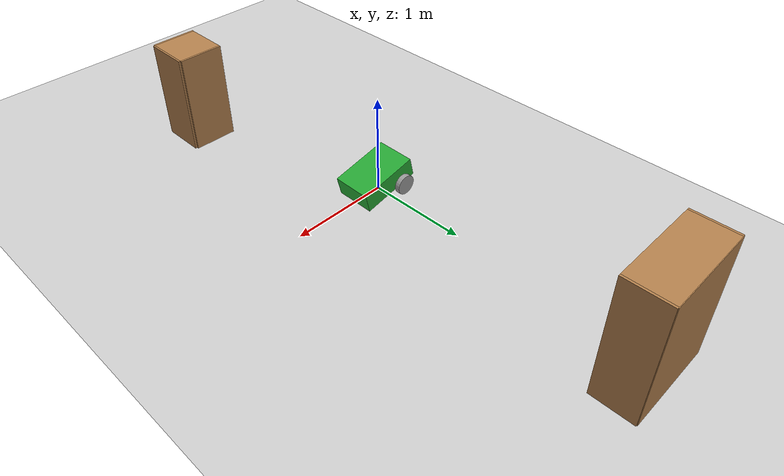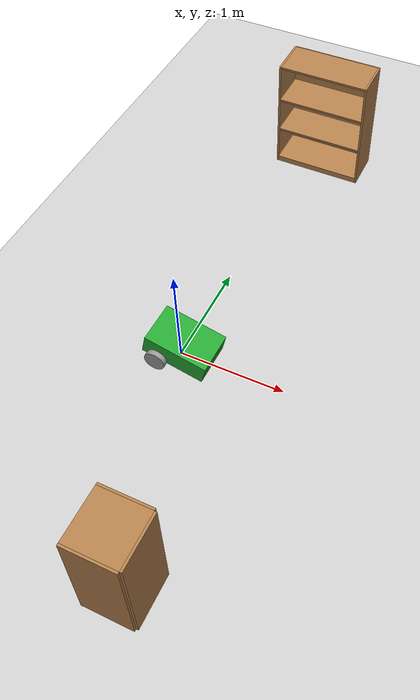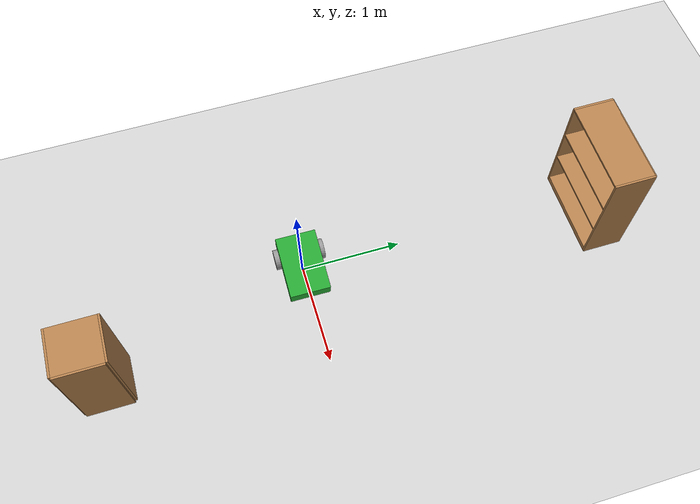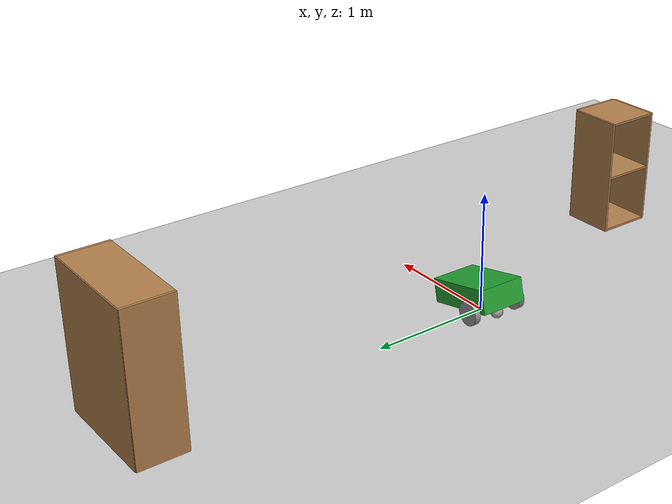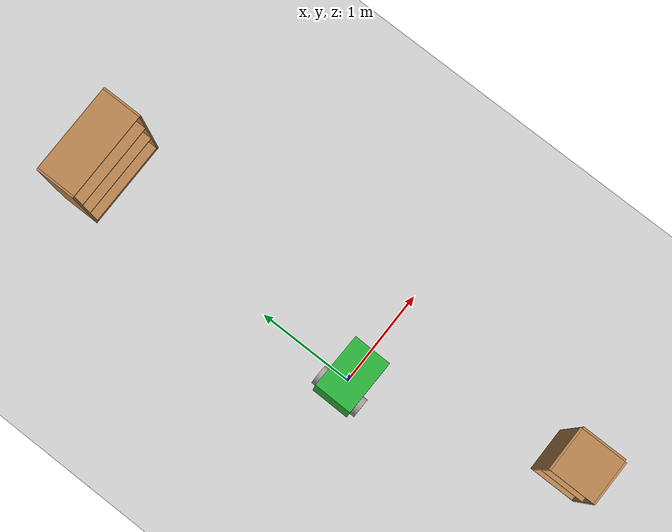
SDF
<sdf version="1.7">
 <world name="default">
  <light name="sun" type="directional">
   <pose>0 0 10 0 -0 0</pose>
   <diffuse>0.8 0.8 0.8 1</diffuse>
   <specular>0.2 0.2 0.2 1</specular>
   <attenuation>
    <range>1000</range>
    <constant>0.9</constant>
    <linear>0.01</linear>
    <quadratic>0.001</quadratic>
   </attenuation>
   <direction>-0.5 0.1 -0.9</direction>
   <spot><inner_angle>0</inner_angle><outer_angle>0</outer_angle><falloff>0</falloff></spot>
  </light>
  <model name="ground_plane">
   <static>1</static>
   <link name="link">
    <collision name="collision">
     <geometry><plane><normal>0 0 1</normal><size>100 100</size></plane></geometry>
     <surface><friction><ode><mu>100</mu><mu2>50</mu2></ode></friction></surface>
    </collision>
    <visual name="visual">
     <cast_shadows>0</cast_shadows>
     <geometry><plane><normal>0 0 1</normal><size>100 100</size></plane></geometry>
     <material>
      <script><uri>file://media/materials/scripts/gazebo.material</uri><name>Gazebo/Grey</name></script>
     </material>
    </visual>
   </link>
  </model>
  <gravity>0 0 -9.8</gravity>
  <magnetic_field>6e-06 2.3e-05 -4.2e-05</magnetic_field>
  <atmosphere type="adiabatic"/>
  <physics type="ode">
   <max_step_size>0.001</max_step_size>
   <real_time_factor>1</real_time_factor>
   <real_time_update_rate>1000</real_time_update_rate>
  </physics>
  <scene><ambient>0.4 0.4 0.4 1</ambient><background>0.7 0.7 0.7 1</background><shadows>1</shadows></scene>
  <audio><device>default</device></audio>
  <spherical_coordinates>
   <surface_model>EARTH_WGS84</surface_model>
   <latitude_deg>0</latitude_deg>
   <longitude_deg>0</longitude_deg>
   <elevation>0</elevation>
   <heading_deg>0</heading_deg>
  </spherical_coordinates>
  <model name="my_robot">
   <link name="base_footprint">
    <inertial>
     <pose>-0.018182 0 0.186364 0 -0 0</pose>
     <mass>5.5</mass>
     <inertia>
      <ixx>0.678894</ixx>
      <ixy>0</ixy>
      <ixz>-0.0136364</ixz>
      <iyy>0.897076</iyy>
      <iyz>0</iyz>
      <izz>0.353515</izz>
     </inertia>
    </inertial>
    <collision name="base_footprint_fixed_joint_lump__base_link_collision">
     <pose>0 0 0.2 0 -0 0</pose>
     <geometry><box><size>0.6 0.4 0.2</size></box></geometry>
    </collision>
    <collision name="base_footprint_fixed_joint_lump__caster_wheel_link_collision_1">
     <pose>-0.2 0 0.05 0 -0 0</pose>
     <geometry><sphere><radius>0.05</radius></sphere></geometry>
     <surface><friction><ode><mu>0.1</mu><mu2>0.1</mu2></ode></friction></surface>
    </collision>
    <visual name="base_footprint_fixed_joint_lump__base_link_visual">
     <pose>0 0 0.2 0 -0 0</pose>
     <geometry><box><size>0.6 0.4 0.2</size></box></geometry>
     <material>
      <script><name>Gazebo/Green</name><uri>file://media/materials/scripts/gazebo.material</uri></script>
     </material>
    </visual>
    <visual name="base_footprint_fixed_joint_lump__caster_wheel_link_visual_1">
     <pose>-0.2 0 0.05 0 -0 0</pose>
     <geometry><sphere><radius>0.05</radius></sphere></geometry>
     <material>
      <script><name>Gazebo/Grey</name><uri>file://media/materials/scripts/gazebo.material</uri></script>
     </material>
    </visual>
   </link>
   <joint name="base_left_wheel_joint" type="revolute">
    <pose relative_to="base_footprint">-0.15 0.225 0.1 0 -0 0</pose>
    <parent>base_footprint</parent>
    <child>left_wheel_link</child>
    <axis>
     <xyz>0 1 0</xyz>
     <limit><lower>-1e+16</lower><upper>1e+16</upper></limit>
     <dynamics><spring_reference>0</spring_reference><spring_stiffness>0</spring_stiffness></dynamics>
    </axis>
   </joint>
   <link name="left_wheel_link">
    <pose relative_to="base_left_wheel_joint">0 0 0 0 -0 0</pose>
    <inertial>
     <pose>0 0 0 1.5708 -0 0</pose>
     <mass>1</mass>
     <inertia><ixx>0.0108333</ixx><ixy>0</ixy><ixz>0</ixz><iyy>0.0108333</iyy><iyz>0</iyz><izz>0.02</izz></inertia>
    </inertial>
    <collision name="left_wheel_link_collision">
     <pose>0 0 0 1.5708 -0 0</pose>
     <geometry><cylinder><length>0.05</length><radius>0.1</radius></cylinder></geometry>
    </collision>
    <visual name="left_wheel_link_visual">
     <pose>0 0 0 1.5708 -0 0</pose>
     <geometry><cylinder><length>0.05</length><radius>0.1</radius></cylinder></geometry>
     <material>
      <script><name>Gazebo/Grey</name><uri>file://media/materials/scripts/gazebo.material</uri></script>
     </material>
    </visual>
   </link>
   <joint name="base_right_wheel_joint" type="revolute">
    <pose relative_to="base_footprint">-0.15 -0.225 0.1 0 -0 0</pose>
    <parent>base_footprint</parent>
    <child>right_wheel_link</child>
    <axis>
     <xyz>0 1 0</xyz>
     <limit><lower>-1e+16</lower><upper>1e+16</upper></limit>
     <dynamics><spring_reference>0</spring_reference><spring_stiffness>0</spring_stiffness></dynamics>
    </axis>
   </joint>
   <link name="right_wheel_link">
    <pose relative_to="base_right_wheel_joint">0 0 0 0 -0 0</pose>
    <inertial>
     <pose>0 0 0 1.5708 -0 0</pose>
     <mass>1</mass>
     <inertia><ixx>0.0108333</ixx><ixy>0</ixy><ixz>0</ixz><iyy>0.0108333</iyy><iyz>0</iyz><izz>0.02</izz></inertia>
    </inertial>
    <collision name="right_wheel_link_collision">
     <pose>0 0 0 1.5708 -0 0</pose>
     <geometry><cylinder><length>0.05</length><radius>0.1</radius></cylinder></geometry>
    </collision>
    <visual name="right_wheel_link_visual">
     <pose>0 0 0 1.5708 -0 0</pose>
     <geometry><cylinder><length>0.05</length><radius>0.1</radius></cylinder></geometry>
     <material>
      <script><name>Gazebo/Grey</name><uri>file://media/materials/scripts/gazebo.material</uri></script>
     </material>
    </visual>
   </link>
   <static>0</static>
   <plugin name="diff_drive_controller" filename="libgazebo_ros_diff_drive.so">
    <update_rate>50</update_rate>
    <left_joint>base_left_wheel_joint</left_joint>
    <right_joint>base_right_wheel_joint</right_joint>
    <wheel_separation>0.45</wheel_separation>
    <wheel_diameter>0.2</wheel_diameter>
    <publish_odom>1</publish_odom>
    <publish_odom_tf>1</publish_odom_tf>
    <publish_wheel_tf>1</publish_wheel_tf>
    <odometry_topic>odom</odometry_topic>
    <odometry_frame>odom</odometry_frame>
    <robot_base_frame>base_footprint</robot_base_frame>
   </plugin>
   <pose>-0.004013 -0.001161 -0.030833 -3e-06 0.224091 -0.012044</pose>
  </model>
  <model name="bookshelf">
   <static>1</static>
   <link name="link">
    <inertial><mass>1</mass></inertial>
    <collision name="back">
     <pose>0 0.005 0.6 0 -0 0</pose>
     <geometry><box><size>0.9 0.01 1.2</size></box></geometry>
    </collision>
    <visual name="visual1">
     <pose>0 0.005 0.6 0 -0 0</pose>
     <geometry><box><size>0.9 0.01 1.2</size></box></geometry>
     <material>
      <script><uri>file://media/materials/scripts/gazebo.material</uri><name>Gazebo/Wood</name></script>
     </material>
    </visual>
    <collision name="left_side">
     <pose>0.45 -0.195 0.6 0 -0 0</pose>
     <geometry><box><size>0.02 0.4 1.2</size></box></geometry>
    </collision>
    <visual name="visual2">
     <pose>0.45 -0.195 0.6 0 -0 0</pose>
     <geometry><box><size>0.02 0.4 1.2</size></box></geometry>
     <material>
      <script><uri>file://media/materials/scripts/gazebo.material</uri><name>Gazebo/Wood</name></script>
     </material>
    </visual>
    <collision name="right_side">
     <pose>-0.45 -0.195 0.6 0 -0 0</pose>
     <geometry><box><size>0.02 0.4 1.2</size></box></geometry>
    </collision>
    <visual name="visual3">
     <pose>-0.45 -0.195 0.6 0 -0 0</pose>
     <geometry><box><size>0.02 0.4 1.2</size></box></geometry>
     <material>
      <script><uri>file://media/materials/scripts/gazebo.material</uri><name>Gazebo/Wood</name></script>
     </material>
    </visual>
    <collision name="bottom">
     <pose>0 -0.195 0.03 0 -0 0</pose>
     <geometry><box><size>0.88 0.4 0.06</size></box></geometry>
    </collision>
    <visual name="visual4">
     <pose>0 -0.195 0.03 0 -0 0</pose>
     <geometry><box><size>0.88 0.4 0.06</size></box></geometry>
     <material>
      <script><uri>file://media/materials/scripts/gazebo.material</uri><name>Gazebo/Wood</name></script>
     </material>
    </visual>
    <collision name="top">
     <pose>0 -0.195 1.19 0 -0 0</pose>
     <geometry><box><size>0.88 0.4 0.02</size></box></geometry>
    </collision>
    <visual name="visual5">
     <pose>0 -0.195 1.19 0 -0 0</pose>
     <geometry><box><size>0.88 0.4 0.02</size></box></geometry>
     <material>
      <script><uri>file://media/materials/scripts/gazebo.material</uri><name>Gazebo/Wood</name></script>
     </material>
    </visual>
    <collision name="low_shelf">
     <pose>0 -0.195 0.43 0 -0 0</pose>
     <geometry><box><size>0.88 0.4 0.02</size></box></geometry>
    </collision>
    <visual name="visual6">
     <pose>0 -0.195 0.43 0 -0 0</pose>
     <geometry><box><size>0.88 0.4 0.02</size></box></geometry>
     <material>
      <script><uri>file://media/materials/scripts/gazebo.material</uri><name>Gazebo/Wood</name></script>
     </material>
    </visual>
    <collision name="high_shelf">
     <pose>0 -0.195 0.8 0 -0 0</pose>
     <geometry><box><size>0.88 0.4 0.02</size></box></geometry>
    </collision>
    <visual name="visual7">
     <pose>0 -0.195 0.8 0 -0 0</pose>
     <geometry><box><size>0.88 0.4 0.02</size></box></geometry>
     <material>
      <script><uri>file://media/materials/scripts/gazebo.material</uri><name>Gazebo/Wood</name></script>
     </material>
    </visual>
   </link>
   <pose>0.172183 3.16894 0 0 -0 0</pose>
  </model>
  <model name="cabinet">
   <static>1</static>
   <link name="cabinet_bottom_plate">
    <inertial>
     <pose>0 0 -1 0 -0 0</pose>
     <inertia><ixx>2.05</ixx><ixy>0</ixy><ixz>0</ixz><iyy>2.05</iyy><iyz>0</iyz><izz>2.05</izz></inertia>
     <mass>25</mass>
    </inertial>
    <collision name="cabinet_bottom_plate_geom">
     <pose>0 0 0.01 0 -0 0</pose>
     <geometry><box><size>0.45 0.45 0.02</size></box></geometry>
    </collision>
    <visual name="cabinet_bottom_plate_geom_visual">
     <pose>0 0 0.01 0 -0 0</pose>
     <geometry><box><size>0.45 0.45 0.02</size></box></geometry>
     <material>
      <script><uri>file://media/materials/scripts/gazebo.material</uri><name>Gazebo/Wood</name></script>
     </material>
    </visual>
    <collision name="cabinet_bottom_plate_geom_cabinet_back_plate">
     <pose>0.235 0 0.51 0 -0 0</pose>
     <geometry><box><size>0.02 0.45 1.02</size></box></geometry>
    </collision>
    <visual name="cabinet_bottom_plate_geom_cabinet_back_plate_visual">
     <pose>0.235 0 0.51 0 -0 0</pose>
     <geometry><box><size>0.02 0.45 1.02</size></box></geometry>
     <material>
      <script><uri>file://media/materials/scripts/gazebo.material</uri><name>Gazebo/Wood</name></script>
     </material>
    </visual>
    <collision name="cabinet_bottom_plate_geom_cabinet_left_plate">
     <pose>0 0.235 0.51 0 -0 0</pose>
     <geometry><box><size>0.45 0.02 1.02</size></box></geometry>
    </collision>
    <visual name="cabinet_bottom_plate_geom_cabinet_left_plate_visual">
     <pose>0 0.235 0.51 0 -0 0</pose>
     <geometry><box><size>0.45 0.02 1.02</size></box></geometry>
     <material>
      <script><uri>file://media/materials/scripts/gazebo.material</uri><name>Gazebo/Wood</name></script>
     </material>
    </visual>
    <collision name="cabinet_bottom_plate_geom_cabinet_middle_plate">
     <pose>0 0 0.51 0 -0 0</pose>
     <geometry><box><size>0.45 0.45 0.02</size></box></geometry>
    </collision>
    <visual name="cabinet_bottom_plate_geom_cabinet_middle_plate_visual">
     <pose>0 0 0.51 0 -0 0</pose>
     <geometry><box><size>0.45 0.45 0.02</size></box></geometry>
     <material>
      <script><uri>file://media/materials/scripts/gazebo.material</uri><name>Gazebo/Wood</name></script>
     </material>
    </visual>
    <collision name="cabinet_bottom_plate_geom_cabinet_right_plate">
     <pose>0 -0.235 0.51 0 -0 0</pose>
     <geometry><box><size>0.45 0.02 1.02</size></box></geometry>
    </collision>
    <visual name="cabinet_bottom_plate_geom_cabinet_right_plate_visual">
     <pose>0 -0.235 0.51 0 -0 0</pose>
     <geometry><box><size>0.45 0.02 1.02</size></box></geometry>
     <material>
      <script><uri>file://media/materials/scripts/gazebo.material</uri><name>Gazebo/Wood</name></script>
     </material>
    </visual>
    <collision name="cabinet_bottom_plate_geom_cabinet_top_plate">
     <pose>0 0 1.01 0 -0 0</pose>
     <geometry><box><size>0.45 0.45 0.02</size></box></geometry>
    </collision>
    <visual name="cabinet_bottom_plate_geom_cabinet_top_plate_visual">
     <pose>0 0 1.01 0 -0 0</pose>
     <geometry><box><size>0.45 0.45 0.02</size></box></geometry>
     <material>
      <script><uri>file://media/materials/scripts/gazebo.material</uri><name>Gazebo/Wood</name></script>
     </material>
    </visual>
   </link>
   <pose>0.631083 -2.06291 0 0 -0 0</pose>
  </model>
 </world>
</sdf>
